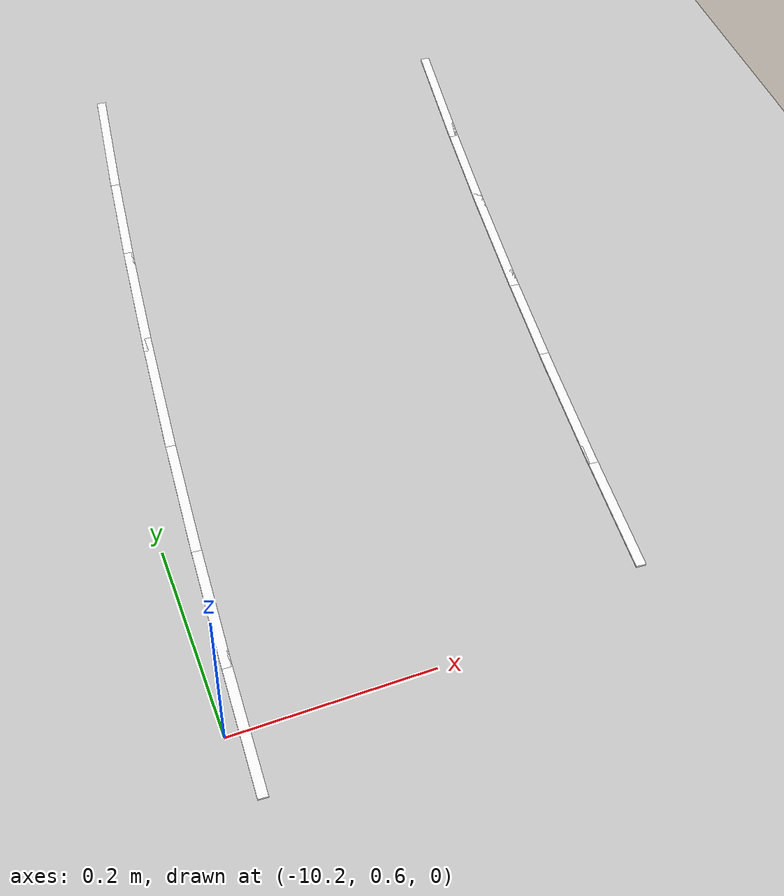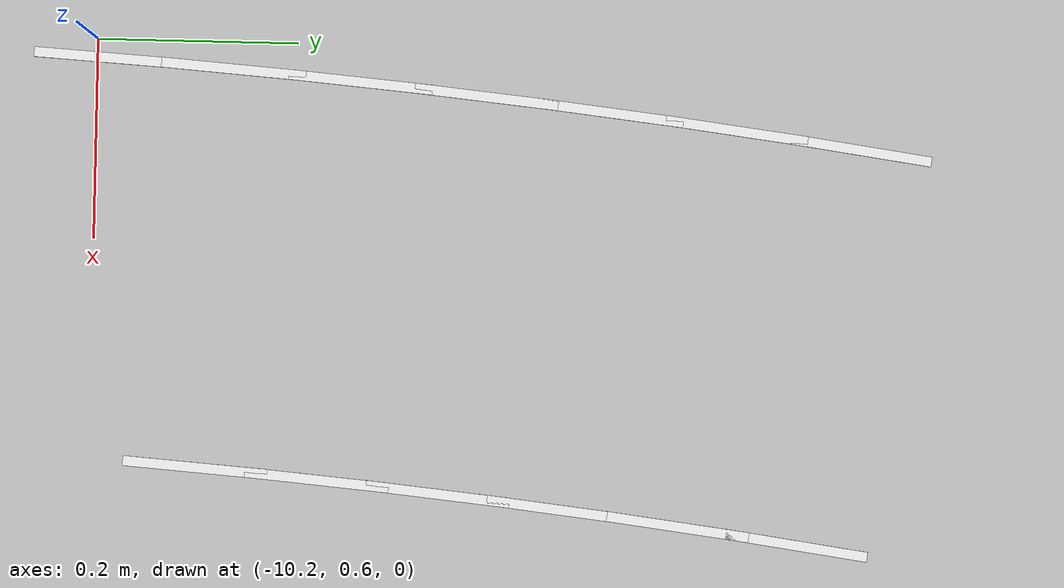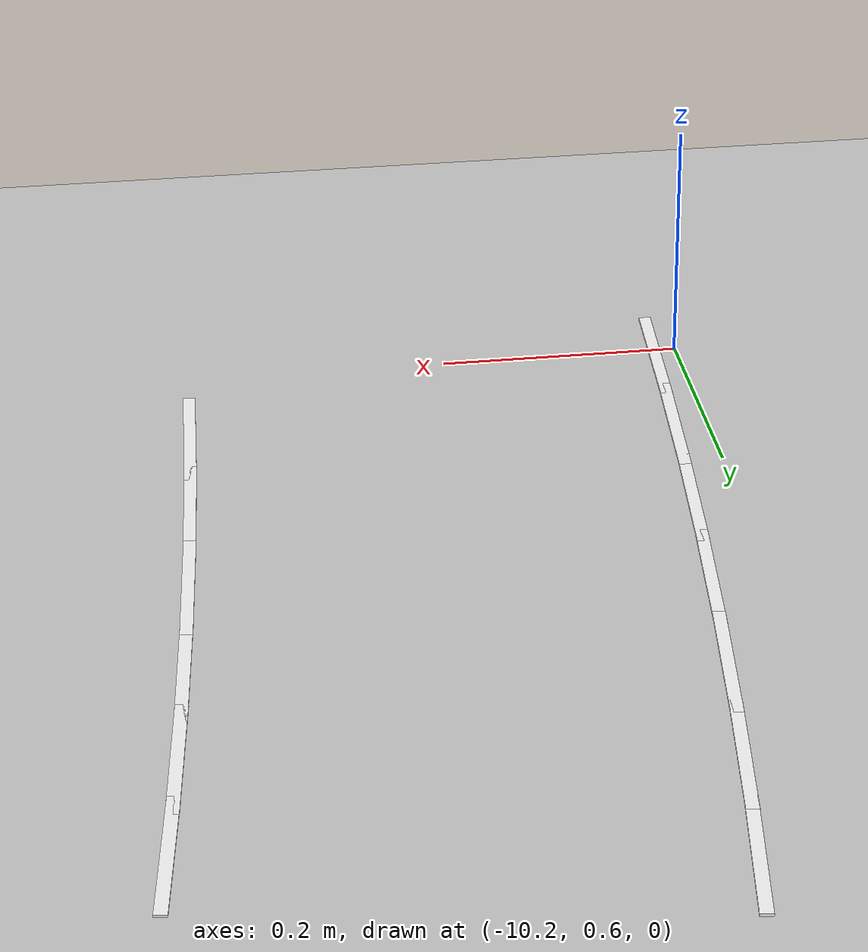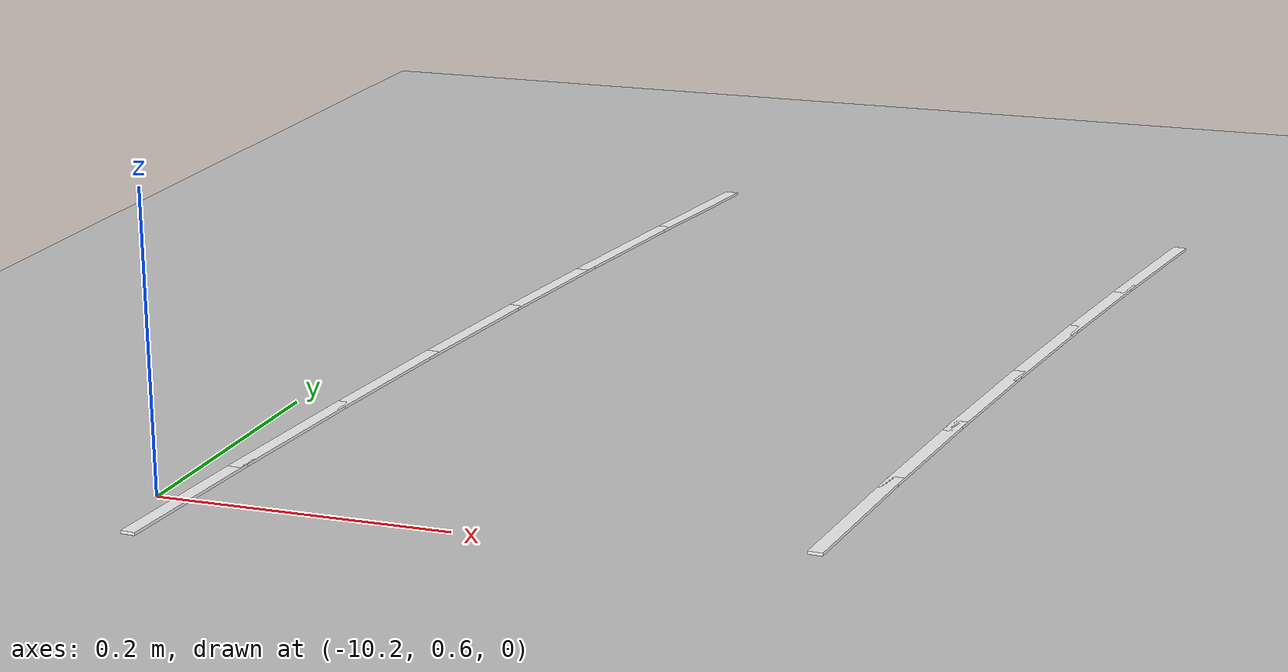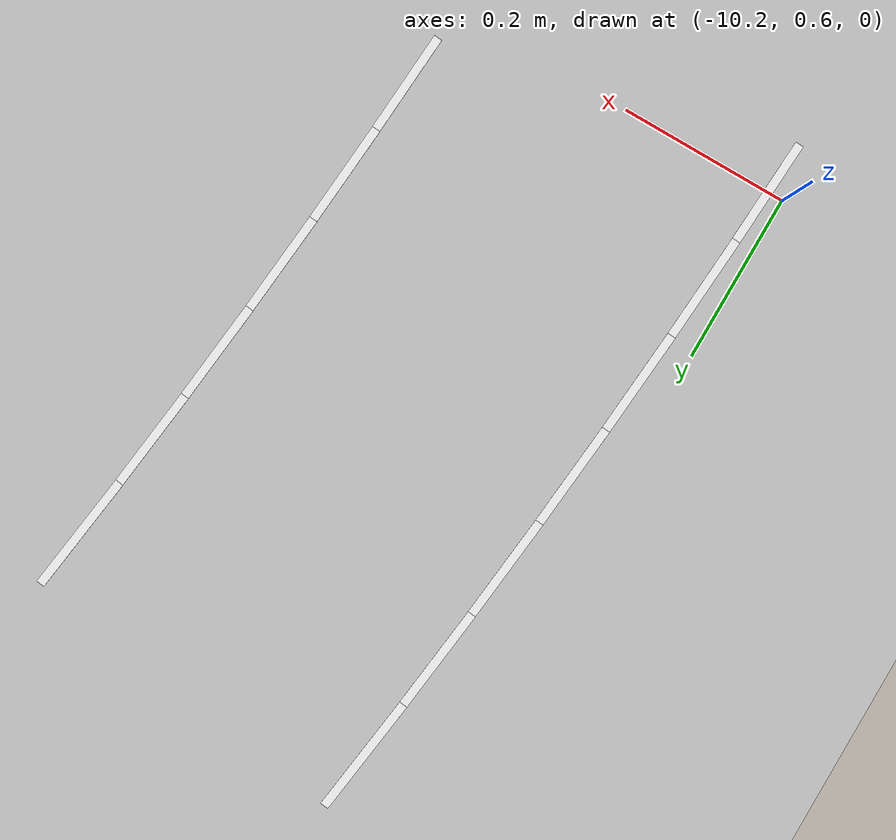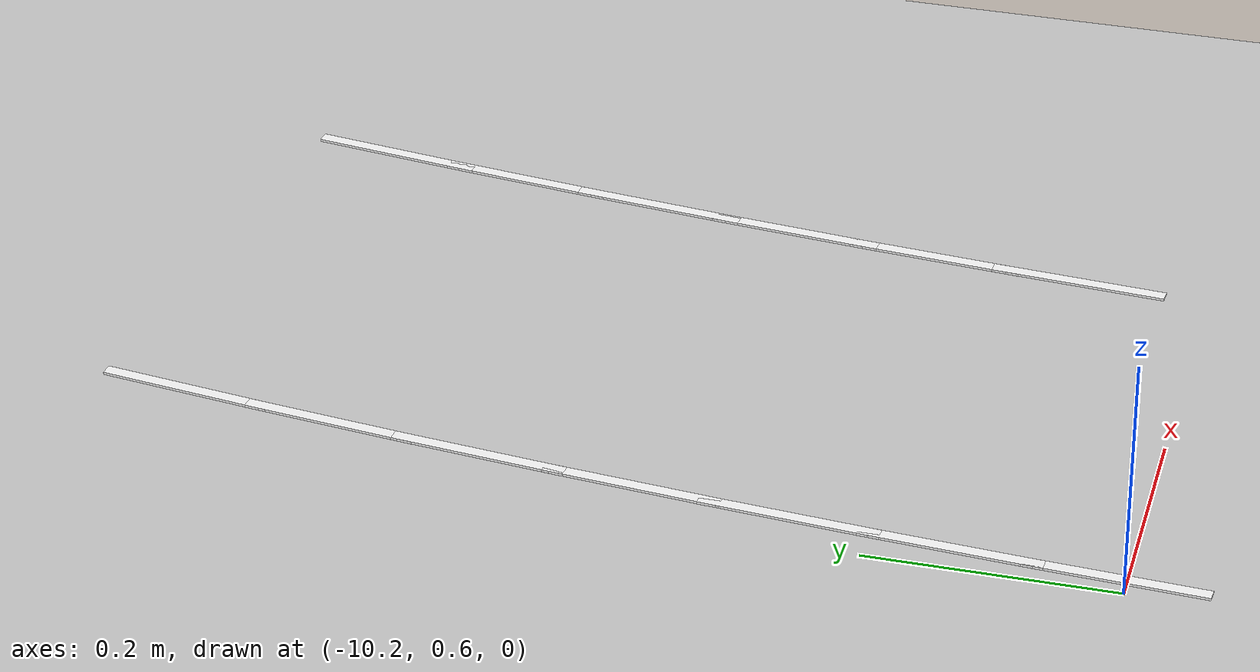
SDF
<sdf version="1.7">
 <world name="default">
  <model name="ground_plane">
   <static>1</static>
   <link name="link">
    <collision name="collision">
     <geometry><plane><normal>0 0 1</normal><size>100 100</size></plane></geometry>
     <surface>
      <contact><collide_bitmask>65535</collide_bitmask></contact>
      <friction><ode><mu>100</mu><mu2>50</mu2></ode></friction>
     </surface>
    </collision>
    <visual name="visual">
     <cast_shadows>0</cast_shadows>
     <geometry><plane><normal>0 0 1</normal><size>100 100</size></plane></geometry>
     <material>
      <script><uri>file://media/materials/scripts/gazebo.material</uri><name>Gazebo/Grey</name></script>
     </material>
    </visual>
   </link>
  </model>
  <model name="lane_line_left_363">
   <static>1</static>
   <link name="link">
    <pose>0 0 -0.004 0 -0 0</pose>
    <visual name="visual">
     <geometry><box><size>0.1425 0.01 0.01</size></box></geometry>
     <material><ambient>1 1 1 1</ambient><diffuse>1 1 1 1</diffuse></material>
    </visual>
    <collision name="collision"><geometry><box><size>0.1425 0.01 0.01</size></box></geometry></collision>
   </link>
   <pose>-9.71027 1.30927 0 0 0 -1.70994</pose>
  </model>
  <model name="lane_line_right_363">
   <static>1</static>
   <link name="link">
    <pose>0 0 -0.004 0 -0 0</pose>
    <visual name="visual">
     <geometry><box><size>0.1425 0.01 0.01</size></box></geometry>
     <material><ambient>1 1 1 1</ambient><diffuse>1 1 1 1</diffuse></material>
    </visual>
    <collision name="collision"><geometry><box><size>0.1425 0.01 0.01</size></box></geometry></collision>
   </link>
   <pose>-10.1064 1.36475 0 0 0 -1.70994</pose>
  </model>
  <model name="lane_line_left_364">
   <static>1</static>
   <link name="link">
    <pose>0 0 -0.004 0 -0 0</pose>
    <visual name="visual">
     <geometry><box><size>0.1431 0.01 0.01</size></box></geometry>
     <material><ambient>1 1 1 1</ambient><diffuse>1 1 1 1</diffuse></material>
    </visual>
    <collision name="collision"><geometry><box><size>0.1431 0.01 0.01</size></box></geometry></collision>
   </link>
   <pose>-9.72611 1.19023 0 0 0 -1.69638</pose>
  </model>
  <model name="lane_line_right_364">
   <static>1</static>
   <link name="link">
    <pose>0 0 -0.004 0 -0 0</pose>
    <visual name="visual">
     <geometry><box><size>0.1431 0.01 0.01</size></box></geometry>
     <material><ambient>1 1 1 1</ambient><diffuse>1 1 1 1</diffuse></material>
    </visual>
    <collision name="collision"><geometry><box><size>0.1431 0.01 0.01</size></box></geometry></collision>
   </link>
   <pose>-10.123 1.24033 0 0 0 -1.69638</pose>
  </model>
  <model name="lane_line_left_365">
   <static>1</static>
   <link name="link">
    <pose>0 0 -0.004 0 -0 0</pose>
    <visual name="visual">
     <geometry><box><size>0.1436 0.01 0.01</size></box></geometry>
     <material><ambient>1 1 1 1</ambient><diffuse>1 1 1 1</diffuse></material>
    </visual>
    <collision name="collision"><geometry><box><size>0.1436 0.01 0.01</size></box></geometry></collision>
   </link>
   <pose>-9.74043 1.07039 0 0 0 -1.683</pose>
  </model>
  <model name="lane_line_right_365">
   <static>1</static>
   <link name="link">
    <pose>0 0 -0.004 0 -0 0</pose>
    <visual name="visual">
     <geometry><box><size>0.1436 0.01 0.01</size></box></geometry>
     <material><ambient>1 1 1 1</ambient><diffuse>1 1 1 1</diffuse></material>
    </visual>
    <collision name="collision"><geometry><box><size>0.1436 0.01 0.01</size></box></geometry></collision>
   </link>
   <pose>-10.1379 1.11517 0 0 0 -1.683</pose>
  </model>
  <model name="lane_line_left_366">
   <static>1</static>
   <link name="link">
    <pose>0 0 -0.004 0 -0 0</pose>
    <visual name="visual">
     <geometry><box><size>0.1441 0.01 0.01</size></box></geometry>
     <material><ambient>1 1 1 1</ambient><diffuse>1 1 1 1</diffuse></material>
    </visual>
    <collision name="collision"><geometry><box><size>0.1441 0.01 0.01</size></box></geometry></collision>
   </link>
   <pose>-9.75321 0.949819 0 0 0 -1.66979</pose>
  </model>
  <model name="lane_line_right_366">
   <static>1</static>
   <link name="link">
    <pose>0 0 -0.004 0 -0 0</pose>
    <visual name="visual">
     <geometry><box><size>0.1441 0.01 0.01</size></box></geometry>
     <material><ambient>1 1 1 1</ambient><diffuse>1 1 1 1</diffuse></material>
    </visual>
    <collision name="collision"><geometry><box><size>0.1441 0.01 0.01</size></box></geometry></collision>
   </link>
   <pose>-10.1512 0.989351 0 0 0 -1.66979</pose>
  </model>
  <model name="lane_line_left_367">
   <static>1</static>
   <link name="link">
    <pose>0 0 -0.004 0 -0 0</pose>
    <visual name="visual">
     <geometry><box><size>0.1446 0.01 0.01</size></box></geometry>
     <material><ambient>1 1 1 1</ambient><diffuse>1 1 1 1</diffuse></material>
    </visual>
    <collision name="collision"><geometry><box><size>0.1446 0.01 0.01</size></box></geometry></collision>
   </link>
   <pose>-9.76444 0.828612 0 0 0 -1.65672</pose>
  </model>
  <model name="lane_line_right_367">
   <static>1</static>
   <link name="link">
    <pose>0 0 -0.004 0 -0 0</pose>
    <visual name="visual">
     <geometry><box><size>0.1446 0.01 0.01</size></box></geometry>
     <material><ambient>1 1 1 1</ambient><diffuse>1 1 1 1</diffuse></material>
    </visual>
    <collision name="collision"><geometry><box><size>0.1446 0.01 0.01</size></box></geometry></collision>
   </link>
   <pose>-10.163 0.862939 0 0 0 -1.65672</pose>
  </model>
  <model name="lane_line_left_368">
   <static>1</static>
   <link name="link">
    <pose>0 0 -0.004 0 -0 0</pose>
    <visual name="visual">
     <geometry><box><size>0.1449 0.01 0.01</size></box></geometry>
     <material><ambient>1 1 1 1</ambient><diffuse>1 1 1 1</diffuse></material>
    </visual>
    <collision name="collision"><geometry><box><size>0.1449 0.01 0.01</size></box></geometry></collision>
   </link>
   <pose>-9.77414 0.706848 0 0 0 -1.64377</pose>
  </model>
  <model name="lane_line_right_368">
   <static>1</static>
   <link name="link">
    <pose>0 0 -0.004 0 -0 0</pose>
    <visual name="visual">
     <geometry><box><size>0.1449 0.01 0.01</size></box></geometry>
     <material><ambient>1 1 1 1</ambient><diffuse>1 1 1 1</diffuse></material>
    </visual>
    <collision name="collision"><geometry><box><size>0.1449 0.01 0.01</size></box></geometry></collision>
   </link>
   <pose>-10.1731 0.736012 0 0 0 -1.64377</pose>
  </model>
  <model name="lane_line_right_369">
   <static>1</static>
   <link name="link">
    <pose>0 0 -0.004 0 -0 0</pose>
    <visual name="visual">
     <geometry><box><size>0.1452 0.01 0.01</size></box></geometry>
     <material><ambient>1 1 1 1</ambient><diffuse>1 1 1 1</diffuse></material>
    </visual>
    <collision name="collision"><geometry><box><size>0.1452 0.01 0.01</size></box></geometry></collision>
   </link>
   <pose>-10.1816 0.608646 0 0 0 -1.63093</pose>
  </model>
 </world>
</sdf>
